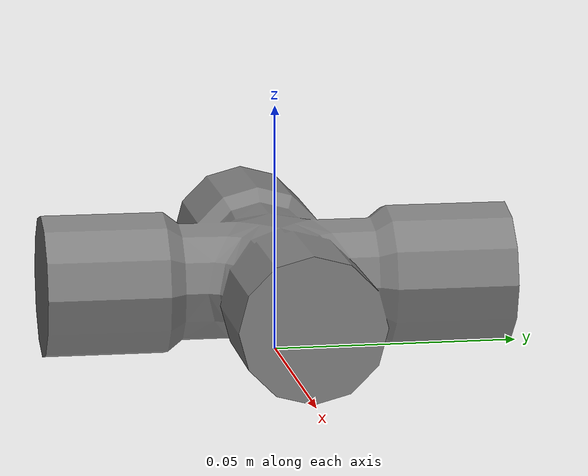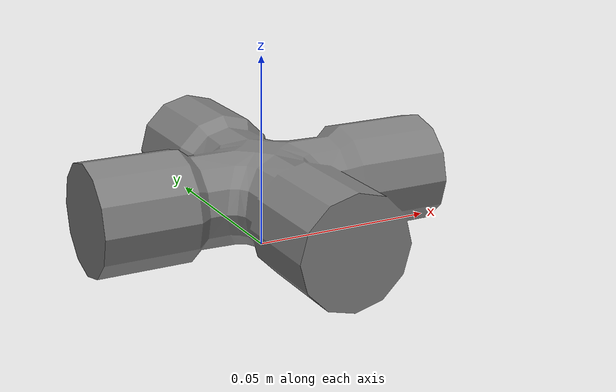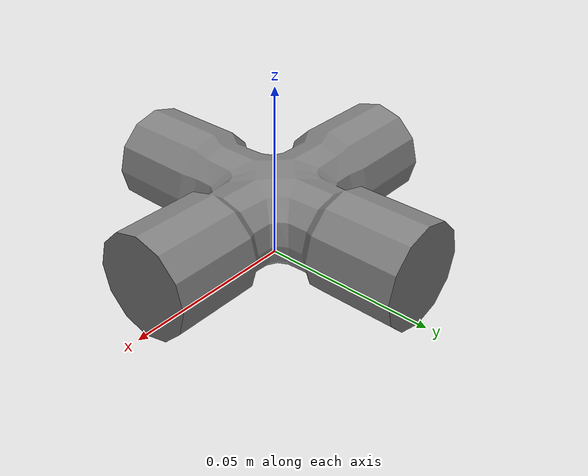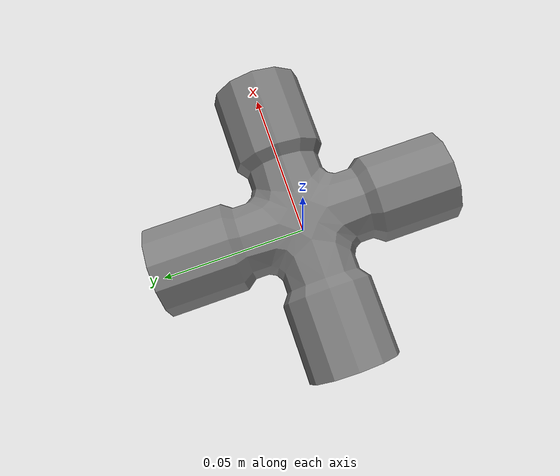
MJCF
<mujoco model="cross_joint">
  <asset>
    <mesh file="meshes/cross_joint.stl" name="cross_joint_mesh" scale="0.0003 0.0003 0.0003"/>
  </asset>
  <worldbody>
    <body>
      <body name="collision">
        <geom pos="0 0 0" mesh="cross_joint_mesh" type="mesh" solimp="0.998 0.998 0.001" solref="0.001 1" density="100" friction="0.95 0.3 0.1"  group="1" condim="4"/>
      </body>
      <body name="visual">
        <geom pos="0 0 0" mesh="cross_joint_mesh" type="mesh" conaffinity="0" contype="0" group="0" mass="0.0001"/>
        <geom pos="0 0 0" mesh="cross_joint_mesh" type="mesh" conaffinity="0" contype="0" group="1" mass="0.0001"/>  <!--why???-->
      </body>
      <site rgba="0 0 0 0" size="0.005" pos="0 0 -0.06" name="bottom_site"/>
      <site rgba="0 0 0 0" size="0.005" pos="0 0 0.04" name="top_site"/>
      <site rgba="0 0 0 0" size="0.005" pos="0.025 0.025 0" name="horizontal_radius_site"/>
    </body>
  </worldbody>
</mujoco>
